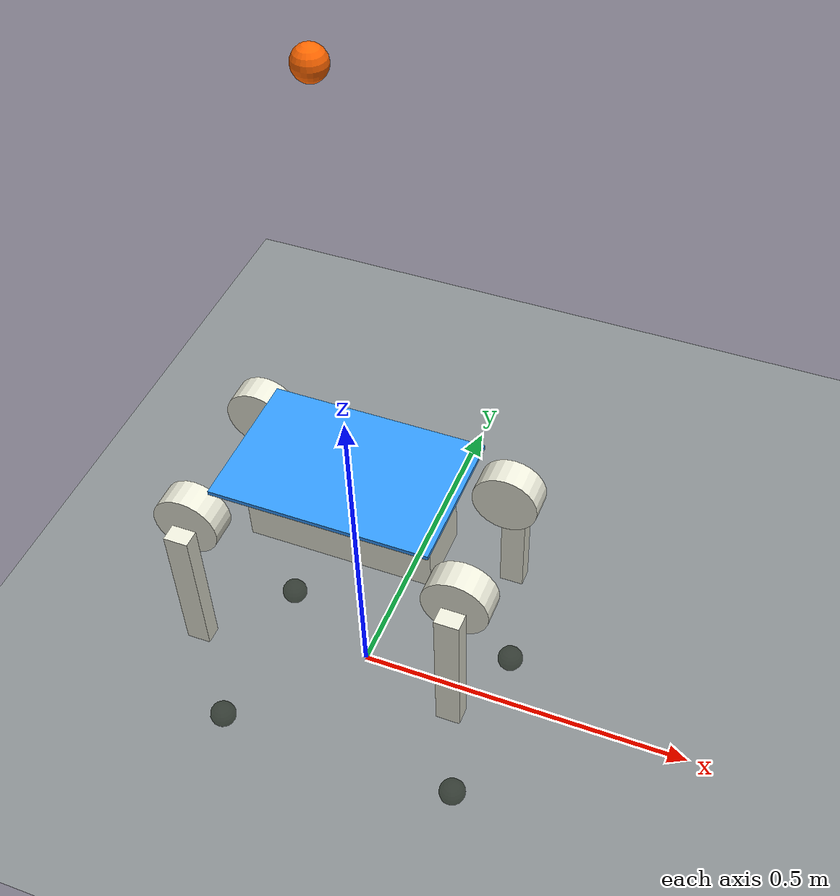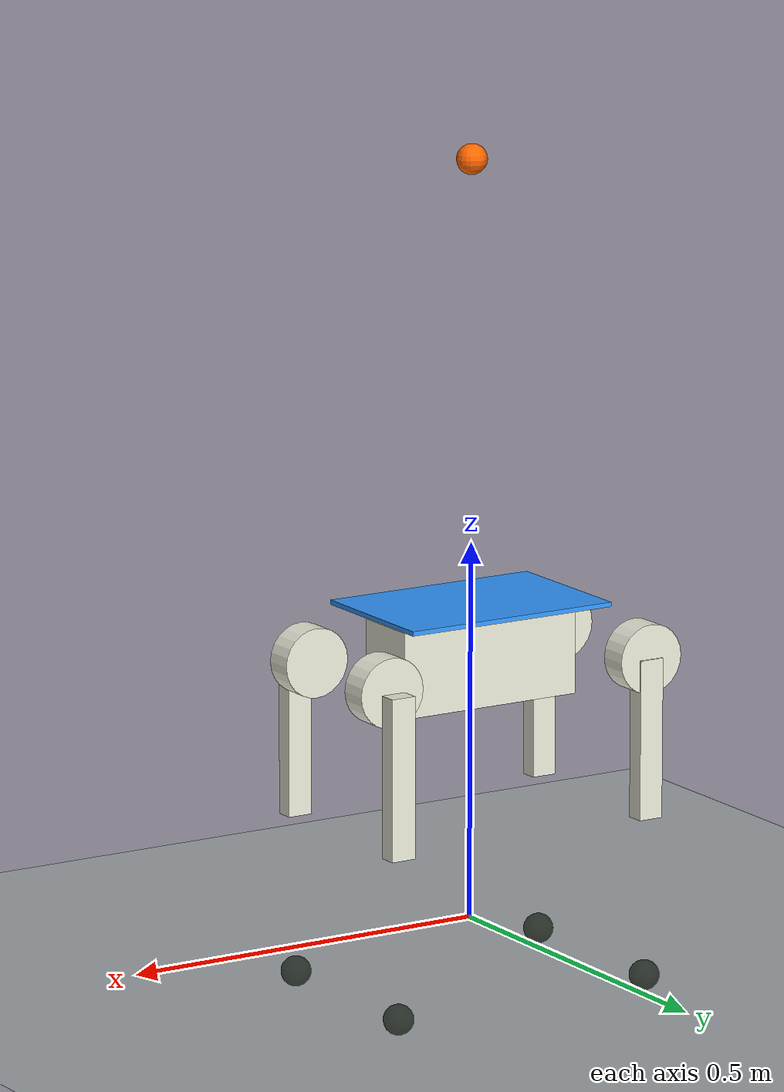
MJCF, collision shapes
<mujoco model="go1_juggle">
    <!-- Go1 quadruped + juggling ball.
         Meshes from walk-these-ways; ball radius 0.020m matching Isaac Lab.
         Ball restitution ~0.85 via tight solref + high solimp.
    -->
    <compiler angle="radian"
              meshdir="/home/frank/berkeley_mde/walk-these-ways/resources/robots/go1/meshes/" />
    <size njmax="500" nconmax="200" />
    <option gravity="0 0 -9.806" iterations="50" solver="Newton" timestep="0.005"/>

    <default>
        <geom contype="1" conaffinity="1" friction="0.6 0.3 0.3"
              rgba="0.5 0.6 0.7 1" margin="0.001" group="0"/>
        <light castshadow="false" diffuse="1 1 1"/>
        <motor ctrlrange="-33.5 33.5" ctrllimited="true"/>
        <camera fovy="60"/>
        <joint damping="0.5" armature="0.01" frictionloss="0.0"/>
    </default>

    <asset>
        <mesh name="trunk"        file="trunk.stl" />
        <mesh name="hip"          file="hip.stl" />
        <mesh name="thigh_mirror" file="thigh_mirror.stl" />
        <mesh name="calf"         file="calf.stl" />
        <mesh name="thigh"        file="thigh.stl" />
        <texture type="skybox" builtin="gradient"
                 rgb1="0.8 0.9 1.0" rgb2="1.0 1.0 1.0" width="512" height="512"/>
        <texture name="plane" type="2d" builtin="flat"
                 rgb1="0.85 0.85 0.85" rgb2="0.85 0.85 0.85"
                 width="512" height="512" mark="cross" markrgb="0.5 0.5 0.5"/>
        <material name="plane" reflectance="0.0" texture="plane"
                  texrepeat="5 5" texuniform="true"/>
    </asset>

    <visual>
        <rgba com="0.502 1.0 0 0.5" contactforce="0.98 0.4 0.4 0.7"
              contactpoint="1.0 1.0 0.6 0.4"/>
        <scale com="0.2" forcewidth="0.035" contactwidth="0.10" contactheight="0.04"/>
    </visual>

    <worldbody>
        <light directional="true" diffuse=".8 .8 .8" pos="0 0 10" dir="0 0 -10"/>
        <!-- Camera that tracks the robot trunk -->
        <camera name="track" mode="trackcom" pos="0 -1.8 1.4" xyaxes="1 0 0 0 0.707 0.707"/>
        <geom name="floor" type="plane" conaffinity="1" condim="3" contype="1"
              rgba="0.7 0.8 0.7 1" material="plane" pos="0 0 0" size="0 0 1"/>

        <!-- ── Go1 robot trunk ─────────────────────────────────── -->
        <!-- trunk_z=0.35 near the WTW natural standing height -->
        <body name="trunk" pos="0 0 0.35">
            <inertial pos="0.0116053 0.00442221 0.000106692"
                      quat="0.0111438 0.707126 -0.00935374 0.706938"
                      mass="4.801" diaginertia="0.0447997 0.0366257 0.0162187"/>
            <joint type="free"/>
            <geom type="mesh" contype="0" conaffinity="0" group="1"
                  rgba="0.913725 0.913725 0.847059 1" mesh="trunk"/>
            <geom name="trunk_box" size="0.13 0.04675 0.057" type="box"
                  rgba="0.913725 0.913725 0.847059 1"/>
            <site name="imu"    pos="0 0 0"/>
            <!-- Paddle: rectangular, 0.30 m × 0.20 m × 0.006 m (L × W × H) -->
            <geom name="paddle" type="box" size="0.15 0.10 0.003" pos="0 0 0.07"
                  rgba="0.2 0.6 1.0 0.7" contype="1" conaffinity="1"
                  mass="0.15"/>
            <site name="paddle_site" pos="0 0 0.07"/>

            <!-- Front-Right leg -->
            <body name="FR_hip" pos="0.1881 -0.04675 0">
                <inertial pos="-0.00406411 -0.0193463 4.50733e-06"
                          quat="0.467526 0.531662 -0.466259 0.530431"
                          mass="0.679292" diaginertia="0.00131334 0.00122648 0.000728484"/>
                <joint name="FR_hip_joint" pos="0 0 0" axis="1 0 0"
                       limited="true" range="-0.802851 0.802851"/>
                <geom quat="0 1 0 0" type="mesh" contype="0" conaffinity="0"
                      group="1" rgba="0.913725 0.913725 0.847059 1" mesh="hip"/>
                <geom name="FR_hip_geom" size="0.046 0.02" pos="0 -0.045 0" quat="0.707107 0.707107 0 0"
                      type="cylinder" rgba="0.913725 0.913725 0.847059 0"/>
                <body name="FR_thigh" pos="0 -0.08 0">
                    <inertial pos="-0.003468 0.018947 -0.032736"
                              quat="0.999266 0.00067676 -0.0382978 0.000639813"
                              mass="0.898919" diaginertia="0.00542178 0.00514246 0.000998869"/>
                    <joint name="FR_thigh_joint" pos="0 0 0" axis="0 1 0"
                           limited="true" range="-1.0472 4.18879"/>
                    <geom type="mesh" contype="0" conaffinity="0" group="1"
                          rgba="0.913725 0.913725 0.847059 1" mesh="thigh_mirror"/>
                    <geom size="0.1065 0.01225 0.017" pos="0 0 -0.1065"
                          quat="0.707107 0 0.707107 0" type="box"
                          rgba="0.913725 0.913725 0.847059 0"/>
                    <body name="FR_calf" pos="0 0 -0.213">
                        <inertial pos="0.00455603 0.0009473 -0.147239"
                                  quat="0.762045 0.00970173 0.0180098 0.647201"
                                  mass="0.218015" diaginertia="0.00399678 0.00398122 3.99428e-05"/>
                        <joint name="FR_calf_joint" pos="0 0 0" axis="0 1 0"
                               limited="true" range="-2.69653 -0.916298"/>
                        <geom type="mesh" contype="0" conaffinity="0" group="1"
                              rgba="0 0 0 1" mesh="calf"/>
                        <geom size="0.02" pos="0 0 -0.213" rgba="0 0 0 1"/>
                    </body>
                </body>
            </body>

            <!-- Front-Left leg -->
            <body name="FL_hip" pos="0.1881 0.04675 0">
                <inertial pos="-0.00406411 0.0193463 4.50733e-06"
                          quat="0.531662 0.467526 -0.530431 0.466259"
                          mass="0.679292" diaginertia="0.00131334 0.00122648 0.000728484"/>
                <joint name="FL_hip_joint" pos="0 0 0" axis="1 0 0"
                       limited="true" range="-0.802851 0.802851"/>
                <geom type="mesh" contype="0" conaffinity="0" group="1"
                      rgba="0.913725 0.913725 0.847059 1" mesh="hip"/>
                <geom name="FL_hip_geom" size="0.046 0.02" pos="0 0.045 0" quat="0.707107 0.707107 0 0"
                      type="cylinder" rgba="0.913725 0.913725 0.847059 0"/>
                <body name="FL_thigh" pos="0 0.08 0">
                    <inertial pos="-0.003468 -0.018947 -0.032736"
                              quat="0.999266 -0.00067676 -0.0382978 -0.000639813"
                              mass="0.898919" diaginertia="0.00542178 0.00514246 0.000998869"/>
                    <joint name="FL_thigh_joint" pos="0 0 0" axis="0 1 0"
                           limited="true" range="-1.0472 4.18879"/>
                    <geom type="mesh" contype="0" conaffinity="0" group="1"
                          rgba="0.913725 0.913725 0.847059 1" mesh="thigh"/>
                    <geom size="0.1065 0.01225 0.017" pos="0 0 -0.1065"
                          quat="0.707107 0 0.707107 0" type="box"
                          rgba="0.913725 0.913725 0.847059 0"/>
                    <body name="FL_calf" pos="0 0 -0.213">
                        <inertial pos="0.00455603 0.0009473 -0.147239"
                                  quat="0.762045 0.00970173 0.0180098 0.647201"
                                  mass="0.218015" diaginertia="0.00399678 0.00398122 3.99428e-05"/>
                        <joint name="FL_calf_joint" pos="0 0 0" axis="0 1 0"
                               limited="true" range="-2.69653 -0.916298"/>
                        <geom type="mesh" contype="0" conaffinity="0" group="1"
                              rgba="0 0 0 1" mesh="calf"/>
                        <geom size="0.02" pos="0 0 -0.213" rgba="0 0 0 1"/>
                    </body>
                </body>
            </body>

            <!-- Rear-Right leg -->
            <body name="RR_hip" pos="-0.1881 -0.04675 0">
                <inertial pos="0.00406411 -0.0193463 4.50733e-06"
                          quat="0.530431 0.466259 -0.531662 0.467526"
                          mass="0.679292" diaginertia="0.00131334 0.00122648 0.000728484"/>
                <joint name="RR_hip_joint" pos="0 0 0" axis="1 0 0"
                       limited="true" range="-0.802851 0.802851"/>
                <geom quat="0 0 0 -1" type="mesh" contype="0" conaffinity="0"
                      group="1" rgba="0.913725 0.913725 0.847059 1" mesh="hip"/>
                <geom name="RR_hip_geom" size="0.046 0.02" pos="0 -0.045 0" quat="0.707107 0.707107 0 0"
                      type="cylinder" rgba="0.913725 0.913725 0.847059 0"/>
                <body name="RR_thigh" pos="0 -0.08 0">
                    <inertial pos="-0.003468 0.018947 -0.032736"
                              quat="0.999266 0.00067676 -0.0382978 0.000639813"
                              mass="0.898919" diaginertia="0.00542178 0.00514246 0.000998869"/>
                    <joint name="RR_thigh_joint" pos="0 0 0" axis="0 1 0"
                           limited="true" range="-1.0472 4.18879"/>
                    <geom type="mesh" contype="0" conaffinity="0" group="1"
                          rgba="0.913725 0.913725 0.847059 1" mesh="thigh_mirror"/>
                    <geom size="0.1065 0.01225 0.017" pos="0 0 -0.1065"
                          quat="0.707107 0 0.707107 0" type="box"
                          rgba="0.913725 0.913725 0.847059 0"/>
                    <body name="RR_calf" pos="0 0 -0.213">
                        <inertial pos="0.00455603 0.0009473 -0.147239"
                                  quat="0.762045 0.00970173 0.0180098 0.647201"
                                  mass="0.218015" diaginertia="0.00399678 0.00398122 3.99428e-05"/>
                        <joint name="RR_calf_joint" pos="0 0 0" axis="0 1 0"
                               limited="true" range="-2.69653 -0.916298"/>
                        <geom type="mesh" contype="0" conaffinity="0" group="1"
                              rgba="0 0 0 1" mesh="calf"/>
                        <geom size="0.02" pos="0 0 -0.213" rgba="0 0 0 1"/>
                    </body>
                </body>
            </body>

            <!-- Rear-Left leg -->
            <body name="RL_hip" pos="-0.1881 0.04675 0">
                <inertial pos="0.00406411 0.0193463 4.50733e-06"
                          quat="0.466259 0.530431 -0.467526 0.531662"
                          mass="0.679292" diaginertia="0.00131334 0.00122648 0.000728484"/>
                <joint name="RL_hip_joint" pos="0 0 0" axis="1 0 0"
                       limited="true" range="-0.802851 0.802851"/>
                <geom quat="0 0 1 0" type="mesh" contype="0" conaffinity="0"
                      group="1" rgba="0.913725 0.913725 0.847059 1" mesh="hip"/>
                <geom name="RL_hip_geom" size="0.046 0.02" pos="0 0.07 0" quat="0.707107 0.707107 0 0"
                      type="cylinder" rgba="0.913725 0.913725 0.847059 0"/>
                <body name="RL_thigh" pos="0 0.08 0">
                    <inertial pos="-0.003468 -0.018947 -0.032736"
                              quat="0.999266 -0.00067676 -0.0382978 -0.000639813"
                              mass="0.898919" diaginertia="0.00542178 0.00514246 0.000998869"/>
                    <joint name="RL_thigh_joint" pos="0 0 0" axis="0 1 0"
                           limited="true" range="-1.0472 4.18879"/>
                    <geom type="mesh" contype="0" conaffinity="0" group="1"
                          rgba="0.913725 0.913725 0.847059 1" mesh="thigh"/>
                    <geom size="0.1065 0.01225 0.017" pos="0 0 -0.1065"
                          quat="0.707107 0 0.707107 0" type="box"
                          rgba="0.913725 0.913725 0.847059 0"/>
                    <body name="RL_calf" pos="0 0 -0.213">
                        <inertial pos="0.00455603 0.0009473 -0.147239"
                                  quat="0.762045 0.00970173 0.0180098 0.647201"
                                  mass="0.218015" diaginertia="0.00399678 0.00398122 3.99428e-05"/>
                        <joint name="RL_calf_joint" pos="0 0 0" axis="0 1 0"
                               limited="true" range="-2.69653 -0.916298"/>
                        <geom type="mesh" contype="0" conaffinity="0" group="1"
                              rgba="0 0 0 1" mesh="calf"/>
                        <geom size="0.02" pos="0 0 -0.213" rgba="0 0 0 1"/>
                    </body>
                </body>
            </body>
        </body>

        <!-- ── Juggling ball ──────────────────────────────────────── -->
        <!-- Starts ~0.12 m above paddle (paddle at ~0.38 m, ball at 0.50 m) -->
        <body name="ball" pos="0 0 1.00">
            <joint name="ball_free" type="free"
                   damping="0" armature="0" frictionloss="0"/>
            <geom name="ball_geom" type="sphere" size="0.020" mass="0.0027"
                  rgba="1.0 0.4 0.0 1"
                  contype="1" conaffinity="1"
                  friction="0.3 0.3 0.3"/>
        </body>
    </worldbody>

    <!-- ── Contact pairs: elastic ball-paddle bounce ──────────── -->
    <contact>
        <!-- Ball-paddle: high restitution (~0.99), stiff spring, margin prevents tunneling -->
        <pair geom1="ball_geom" geom2="paddle"
            solref="-10000 -0.1"
            solimp="0.8 0.95 0.001 0.5 2"
            margin="0.025"/>
        <!-- Ball-body (trunk + hip motors): tunable elasticity, margin prevents tunneling -->
        <pair geom1="ball_geom" geom2="trunk_box"   solref="-20000 -5.0" solimp="0.8 0.95 0.001 0.5 2" margin="0.025"/>
        <pair geom1="ball_geom" geom2="FR_hip_geom" solref="-20000 -5.0" solimp="0.8 0.95 0.001 0.5 2" margin="0.025"/>
        <pair geom1="ball_geom" geom2="FL_hip_geom" solref="-20000 -5.0" solimp="0.8 0.95 0.001 0.5 2" margin="0.025"/>
        <pair geom1="ball_geom" geom2="RR_hip_geom" solref="-20000 -5.0" solimp="0.8 0.95 0.001 0.5 2" margin="0.025"/>
        <pair geom1="ball_geom" geom2="RL_hip_geom" solref="-20000 -5.0" solimp="0.8 0.95 0.001 0.5 2" margin="0.025"/>
        <!-- Ball-floor: e≈0.87 (b=2.0, ζ=b/(2√km)=0.043) — ball bounces visibly off ground -->
        <pair geom1="ball_geom" geom2="floor"
              solref="-5000 -1"
              solimp="0.8 0.95 0.001 0.5 2"/>
    </contact>

    <!-- ── Actuators (torque control, PD applied in script) ─── -->
    <!-- Order: FR, FL, RR, RL  (matches go1.xml actuator order) -->
    <actuator>
        <motor name="FR_hip"   gear="1" joint="FR_hip_joint"/>
        <motor name="FR_thigh" gear="1" joint="FR_thigh_joint"/>
        <motor name="FR_calf"  gear="1" joint="FR_calf_joint"/>
        <motor name="FL_hip"   gear="1" joint="FL_hip_joint"/>
        <motor name="FL_thigh" gear="1" joint="FL_thigh_joint"/>
        <motor name="FL_calf"  gear="1" joint="FL_calf_joint"/>
        <motor name="RR_hip"   gear="1" joint="RR_hip_joint"/>
        <motor name="RR_thigh" gear="1" joint="RR_thigh_joint"/>
        <motor name="RR_calf"  gear="1" joint="RR_calf_joint"/>
        <motor name="RL_hip"   gear="1" joint="RL_hip_joint"/>
        <motor name="RL_thigh" gear="1" joint="RL_thigh_joint"/>
        <motor name="RL_calf"  gear="1" joint="RL_calf_joint"/>
    </actuator>
</mujoco>
